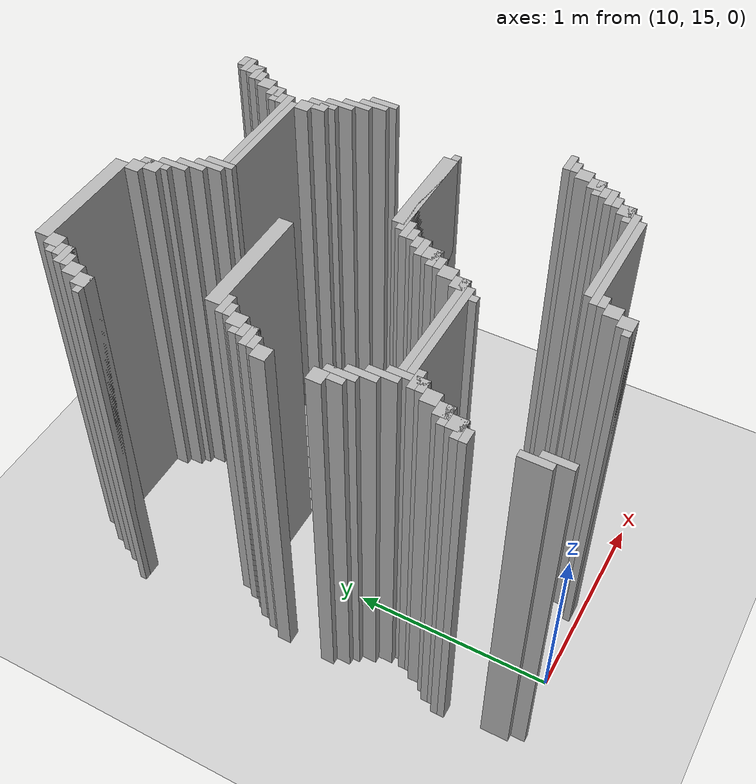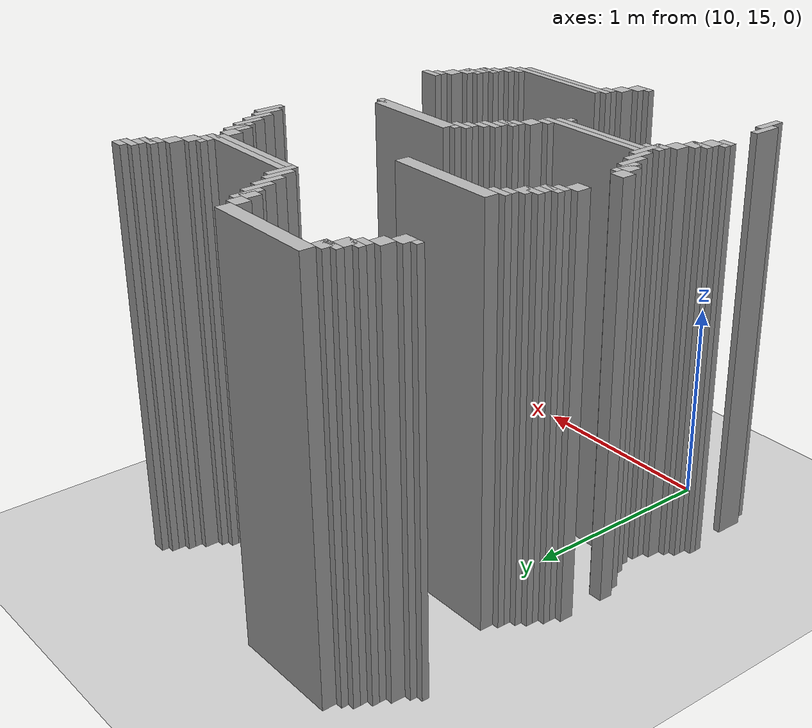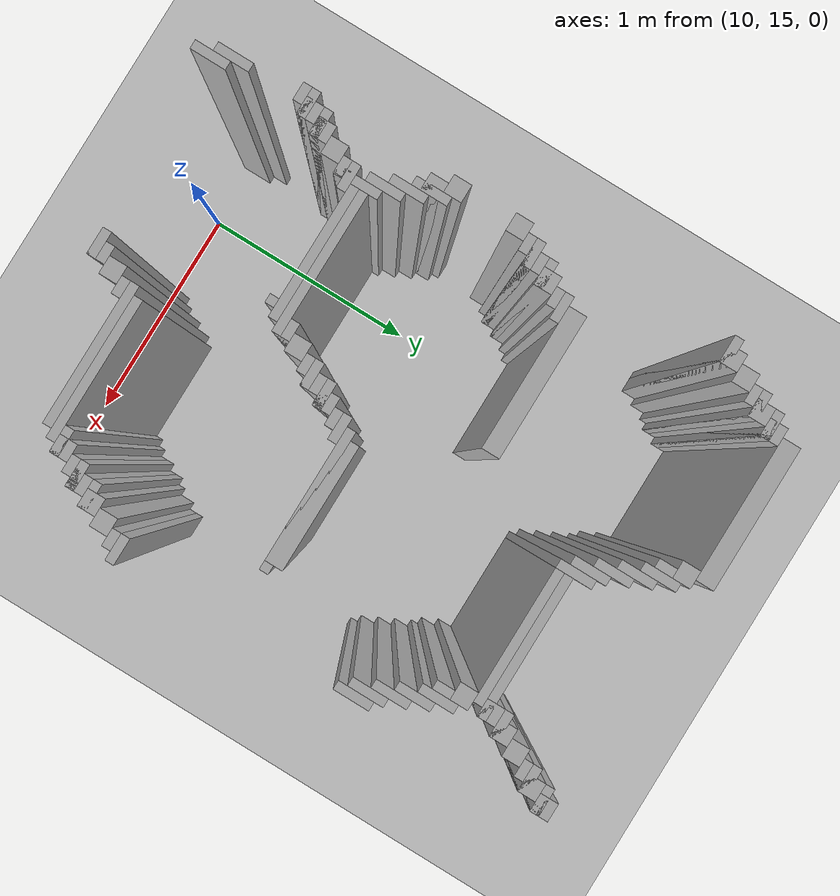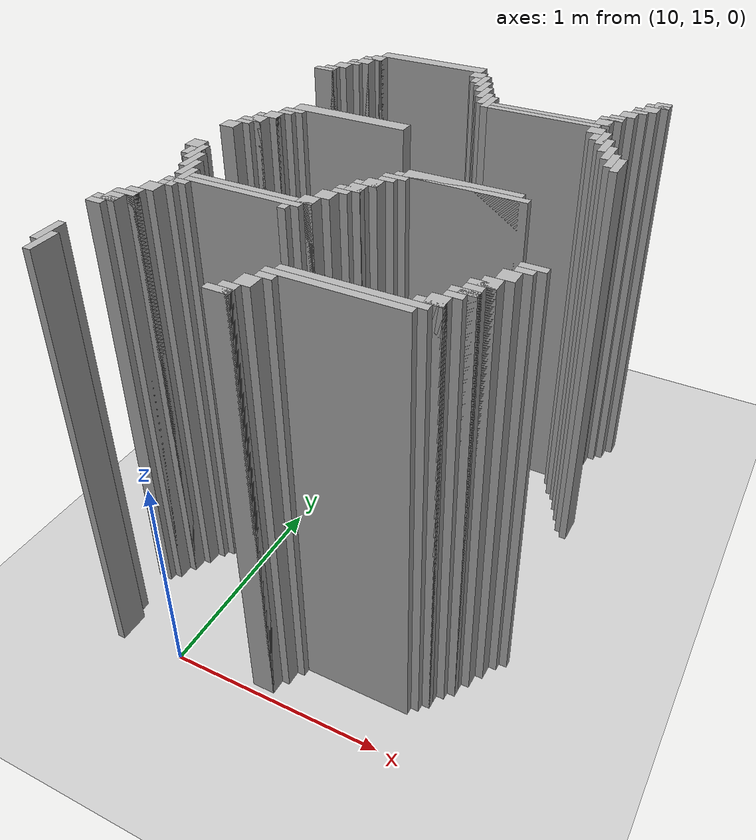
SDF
<sdf version="1.6">
 <world name="slam_world">
  <model name="ground_plane">
   <static>true</static>
   <link name="link">
    <collision name="collision">
     <geometry><plane><normal>0 0 1</normal><size>100 100</size></plane></geometry>
    </collision>
    <visual name="visual">
     <geometry><plane><normal>0 0 1</normal><size>100 100</size></plane></geometry>
     <material>
      <ambient>0.8 0.8 0.8 1</ambient>
      <diffuse>0.8 0.8 0.8 1</diffuse>
      <specular>0.8 0.8 0.8 1</specular>
     </material>
    </visual>
   </link>
  </model>
  <model name="wall_7">
   <static>true</static>
   <pose>10.058004640371228 17.366589327146173 1.0 0 0 0</pose>
   <link name="link">
    <collision name="collision">
     <geometry><box><size>0.5568445475638051 0.06960556844547564 2.0</size></box></geometry>
    </collision>
    <visual name="visual">
     <geometry><box><size>0.5568445475638051 0.06960556844547564 2.0</size></box></geometry>
     <material><ambient>0.5 0.5 0.5 1</ambient><diffuse>0.7 0.7 0.7 1</diffuse></material>
    </visual>
   </link>
  </model>
  <model name="wall_23">
   <static>true</static>
   <pose>9.779582366589327 17.296983758700694 1.0 0 0 0</pose>
   <link name="link">
    <collision name="collision">
     <geometry><box><size>0.06960556844547564 0.06960556844547564 2.0</size></box></geometry>
    </collision>
    <visual name="visual">
     <geometry><box><size>0.06960556844547564 0.06960556844547564 2.0</size></box></geometry>
     <material><ambient>0.5 0.5 0.5 1</ambient><diffuse>0.7 0.7 0.7 1</diffuse></material>
    </visual>
   </link>
  </model>
  <model name="wall_24">
   <static>true</static>
   <pose>10.336426914153131 17.296983758700694 1.0 0 0 0</pose>
   <link name="link">
    <collision name="collision">
     <geometry><box><size>0.06960556844547564 0.06960556844547564 2.0</size></box></geometry>
    </collision>
    <visual name="visual">
     <geometry><box><size>0.06960556844547564 0.06960556844547564 2.0</size></box></geometry>
     <material><ambient>0.5 0.5 0.5 1</ambient><diffuse>0.7 0.7 0.7 1</diffuse></material>
    </visual>
   </link>
  </model>
  <model name="wall_25">
   <static>true</static>
   <pose>11.241299303944315 17.296983758700694 1.0 0 0 0</pose>
   <link name="link">
    <collision name="collision">
     <geometry><box><size>0.06960556844547564 0.06960556844547564 2.0</size></box></geometry>
    </collision>
    <visual name="visual">
     <geometry><box><size>0.06960556844547564 0.06960556844547564 2.0</size></box></geometry>
     <material><ambient>0.5 0.5 0.5 1</ambient><diffuse>0.7 0.7 0.7 1</diffuse></material>
    </visual>
   </link>
  </model>
  <model name="wall_43">
   <static>true</static>
   <pose>9.762180974477959 17.279582366589327 1.0 0 0 0</pose>
   <link name="link">
    <collision name="collision">
     <geometry><box><size>0.10440835266821345 0.03480278422273782 2.0</size></box></geometry>
    </collision>
    <visual name="visual">
     <geometry><box><size>0.10440835266821345 0.03480278422273782 2.0</size></box></geometry>
     <material><ambient>0.5 0.5 0.5 1</ambient><diffuse>0.7 0.7 0.7 1</diffuse></material>
    </visual>
   </link>
  </model>
  <model name="wall_44">
   <static>true</static>
   <pose>10.38863109048724 17.22737819025522 1.0 0 0 0</pose>
   <link name="link">
    <collision name="collision">
     <geometry><box><size>0.03480278422273782 0.13921113689095127 2.0</size></box></geometry>
    </collision>
    <visual name="visual">
     <geometry><box><size>0.03480278422273782 0.13921113689095127 2.0</size></box></geometry>
     <material><ambient>0.5 0.5 0.5 1</ambient><diffuse>0.7 0.7 0.7 1</diffuse></material>
    </visual>
   </link>
  </model>
  <model name="wall_45">
   <static>true</static>
   <pose>11.223897911832946 17.279582366589327 1.0 0 0 0</pose>
   <link name="link">
    <collision name="collision">
     <geometry><box><size>0.10440835266821345 0.03480278422273782 2.0</size></box></geometry>
    </collision>
    <visual name="visual">
     <geometry><box><size>0.10440835266821345 0.03480278422273782 2.0</size></box></geometry>
     <material><ambient>0.5 0.5 0.5 1</ambient><diffuse>0.7 0.7 0.7 1</diffuse></material>
    </visual>
   </link>
  </model>
  <model name="wall_63">
   <static>true</static>
   <pose>9.744779582366588 17.22737819025522 1.0 0 0 0</pose>
   <link name="link">
    <collision name="collision">
     <geometry><box><size>0.06960556844547564 0.06960556844547564 2.0</size></box></geometry>
    </collision>
    <visual name="visual">
     <geometry><box><size>0.06960556844547564 0.06960556844547564 2.0</size></box></geometry>
     <material><ambient>0.5 0.5 0.5 1</ambient><diffuse>0.7 0.7 0.7 1</diffuse></material>
    </visual>
   </link>
  </model>
  <model name="wall_64">
   <static>true</static>
   <pose>10.37122969837587 17.22737819025522 1.0 0 0 0</pose>
   <link name="link">
    <collision name="collision">
     <geometry><box><size>0.06960556844547564 0.06960556844547564 2.0</size></box></geometry>
    </collision>
    <visual name="visual">
     <geometry><box><size>0.06960556844547564 0.06960556844547564 2.0</size></box></geometry>
     <material><ambient>0.5 0.5 0.5 1</ambient><diffuse>0.7 0.7 0.7 1</diffuse></material>
    </visual>
   </link>
  </model>
  <model name="wall_65">
   <static>true</static>
   <pose>11.206496519721577 17.22737819025522 1.0 0 0 0</pose>
   <link name="link">
    <collision name="collision">
     <geometry><box><size>0.06960556844547564 0.06960556844547564 2.0</size></box></geometry>
    </collision>
    <visual name="visual">
     <geometry><box><size>0.06960556844547564 0.06960556844547564 2.0</size></box></geometry>
     <material><ambient>0.5 0.5 0.5 1</ambient><diffuse>0.7 0.7 0.7 1</diffuse></material>
    </visual>
   </link>
  </model>
  <model name="wall_83">
   <static>true</static>
   <pose>9.72737819025522 17.209976798143853 1.0 0 0 0</pose>
   <link name="link">
    <collision name="collision">
     <geometry><box><size>0.10440835266821345 0.03480278422273782 2.0</size></box></geometry>
    </collision>
    <visual name="visual">
     <geometry><box><size>0.10440835266821345 0.03480278422273782 2.0</size></box></geometry>
     <material><ambient>0.5 0.5 0.5 1</ambient><diffuse>0.7 0.7 0.7 1</diffuse></material>
    </visual>
   </link>
  </model>
  <model name="wall_84">
   <static>true</static>
   <pose>10.423433874709977 17.157772621809745 1.0 0 0 0</pose>
   <link name="link">
    <collision name="collision">
     <geometry><box><size>0.03480278422273782 0.13921113689095127 2.0</size></box></geometry>
    </collision>
    <visual name="visual">
     <geometry><box><size>0.03480278422273782 0.13921113689095127 2.0</size></box></geometry>
     <material><ambient>0.5 0.5 0.5 1</ambient><diffuse>0.7 0.7 0.7 1</diffuse></material>
    </visual>
   </link>
  </model>
  <model name="wall_85">
   <static>true</static>
   <pose>11.189095127610209 17.209976798143853 1.0 0 0 0</pose>
   <link name="link">
    <collision name="collision">
     <geometry><box><size>0.10440835266821345 0.03480278422273782 2.0</size></box></geometry>
    </collision>
    <visual name="visual">
     <geometry><box><size>0.10440835266821345 0.03480278422273782 2.0</size></box></geometry>
     <material><ambient>0.5 0.5 0.5 1</ambient><diffuse>0.7 0.7 0.7 1</diffuse></material>
    </visual>
   </link>
  </model>
  <model name="wall_97">
   <static>true</static>
   <pose>9.70997679814385 17.17517401392111 1.0 0 0 0</pose>
   <link name="link">
    <collision name="collision">
     <geometry><box><size>0.06960556844547564 0.03480278422273782 2.0</size></box></geometry>
    </collision>
    <visual name="visual">
     <geometry><box><size>0.06960556844547564 0.03480278422273782 2.0</size></box></geometry>
     <material><ambient>0.5 0.5 0.5 1</ambient><diffuse>0.7 0.7 0.7 1</diffuse></material>
    </visual>
   </link>
  </model>
  <model name="wall_98">
   <static>true</static>
   <pose>11.17169373549884 17.17517401392111 1.0 0 0 0</pose>
   <link name="link">
    <collision name="collision">
     <geometry><box><size>0.06960556844547564 0.03480278422273782 2.0</size></box></geometry>
    </collision>
    <visual name="visual">
     <geometry><box><size>0.06960556844547564 0.03480278422273782 2.0</size></box></geometry>
     <material><ambient>0.5 0.5 0.5 1</ambient><diffuse>0.7 0.7 0.7 1</diffuse></material>
    </visual>
   </link>
  </model>
  <model name="wall_113">
   <static>true</static>
   <pose>9.675174013921113 17.122969837587007 1.0 0 0 0</pose>
   <link name="link">
    <collision name="collision">
     <geometry><box><size>0.06960556844547564 0.06960556844547564 2.0</size></box></geometry>
    </collision>
    <visual name="visual">
     <geometry><box><size>0.06960556844547564 0.06960556844547564 2.0</size></box></geometry>
     <material><ambient>0.5 0.5 0.5 1</ambient><diffuse>0.7 0.7 0.7 1</diffuse></material>
    </visual>
   </link>
  </model>
  <model name="wall_114">
   <static>true</static>
   <pose>10.458236658932714 17.08816705336427 1.0 0 0 0</pose>
   <link name="link">
    <collision name="collision">
     <geometry><box><size>0.03480278422273782 0.13921113689095127 2.0</size></box></geometry>
    </collision>
    <visual name="visual">
     <geometry><box><size>0.03480278422273782 0.13921113689095127 2.0</size></box></geometry>
     <material><ambient>0.5 0.5 0.5 1</ambient><diffuse>0.7 0.7 0.7 1</diffuse></material>
    </visual>
   </link>
  </model>
  <model name="wall_115">
   <static>true</static>
   <pose>11.1368909512761 17.122969837587007 1.0 0 0 0</pose>
   <link name="link">
    <collision name="collision">
     <geometry><box><size>0.06960556844547564 0.06960556844547564 2.0</size></box></geometry>
    </collision>
    <visual name="visual">
     <geometry><box><size>0.06960556844547564 0.06960556844547564 2.0</size></box></geometry>
     <material><ambient>0.5 0.5 0.5 1</ambient><diffuse>0.7 0.7 0.7 1</diffuse></material>
    </visual>
   </link>
  </model>
  <model name="wall_133">
   <static>true</static>
   <pose>9.640371229698376 17.053364269141532 1.0 0 0 0</pose>
   <link name="link">
    <collision name="collision">
     <geometry><box><size>0.06960556844547564 0.06960556844547564 2.0</size></box></geometry>
    </collision>
    <visual name="visual">
     <geometry><box><size>0.06960556844547564 0.06960556844547564 2.0</size></box></geometry>
     <material><ambient>0.5 0.5 0.5 1</ambient><diffuse>0.7 0.7 0.7 1</diffuse></material>
    </visual>
   </link>
  </model>
  <model name="wall_134">
   <static>true</static>
   <pose>10.493039443155451 17.01856148491879 1.0 0 0 0</pose>
   <link name="link">
    <collision name="collision">
     <geometry><box><size>0.03480278422273782 0.13921113689095127 2.0</size></box></geometry>
    </collision>
    <visual name="visual">
     <geometry><box><size>0.03480278422273782 0.13921113689095127 2.0</size></box></geometry>
     <material><ambient>0.5 0.5 0.5 1</ambient><diffuse>0.7 0.7 0.7 1</diffuse></material>
    </visual>
   </link>
  </model>
  <model name="wall_135">
   <static>true</static>
   <pose>11.102088167053363 17.053364269141532 1.0 0 0 0</pose>
   <link name="link">
    <collision name="collision">
     <geometry><box><size>0.06960556844547564 0.06960556844547564 2.0</size></box></geometry>
    </collision>
    <visual name="visual">
     <geometry><box><size>0.06960556844547564 0.06960556844547564 2.0</size></box></geometry>
     <material><ambient>0.5 0.5 0.5 1</ambient><diffuse>0.7 0.7 0.7 1</diffuse></material>
    </visual>
   </link>
  </model>
  <model name="wall_153">
   <static>true</static>
   <pose>9.622969837587007 17.035962877030162 1.0 0 0 0</pose>
   <link name="link">
    <collision name="collision">
     <geometry><box><size>0.10440835266821345 0.03480278422273782 2.0</size></box></geometry>
    </collision>
    <visual name="visual">
     <geometry><box><size>0.10440835266821345 0.03480278422273782 2.0</size></box></geometry>
     <material><ambient>0.5 0.5 0.5 1</ambient><diffuse>0.7 0.7 0.7 1</diffuse></material>
    </visual>
   </link>
  </model>
  <model name="wall_154">
   <static>true</static>
   <pose>10.52784222737819 16.983758700696054 1.0 0 0 0</pose>
   <link name="link">
    <collision name="collision">
     <geometry><box><size>0.03480278422273782 0.13921113689095127 2.0</size></box></geometry>
    </collision>
    <visual name="visual">
     <geometry><box><size>0.03480278422273782 0.13921113689095127 2.0</size></box></geometry>
     <material><ambient>0.5 0.5 0.5 1</ambient><diffuse>0.7 0.7 0.7 1</diffuse></material>
    </visual>
   </link>
  </model>
  <model name="wall_155">
   <static>true</static>
   <pose>11.084686774941995 17.035962877030162 1.0 0 0 0</pose>
   <link name="link">
    <collision name="collision">
     <geometry><box><size>0.10440835266821345 0.03480278422273782 2.0</size></box></geometry>
    </collision>
    <visual name="visual">
     <geometry><box><size>0.10440835266821345 0.03480278422273782 2.0</size></box></geometry>
     <material><ambient>0.5 0.5 0.5 1</ambient><diffuse>0.7 0.7 0.7 1</diffuse></material>
    </visual>
   </link>
  </model>
  <model name="wall_168">
   <static>true</static>
   <pose>11.067285382830626 16.983758700696054 1.0 0 0 0</pose>
   <link name="link">
    <collision name="collision">
     <geometry><box><size>0.06960556844547564 0.06960556844547564 2.0</size></box></geometry>
    </collision>
    <visual name="visual">
     <geometry><box><size>0.06960556844547564 0.06960556844547564 2.0</size></box></geometry>
     <material><ambient>0.5 0.5 0.5 1</ambient><diffuse>0.7 0.7 0.7 1</diffuse></material>
    </visual>
   </link>
  </model>
  <model name="wall_178">
   <static>true</static>
   <pose>10.82366589327146 16.966357308584687 1.0 0 0 0</pose>
   <link name="link">
    <collision name="collision">
     <geometry><box><size>0.5568445475638051 0.03480278422273782 2.0</size></box></geometry>
    </collision>
    <visual name="visual">
     <geometry><box><size>0.5568445475638051 0.03480278422273782 2.0</size></box></geometry>
     <material><ambient>0.5 0.5 0.5 1</ambient><diffuse>0.7 0.7 0.7 1</diffuse></material>
    </visual>
   </link>
  </model>
  <model name="wall_189">
   <static>true</static>
   <pose>10.806264501160092 16.93155452436195 1.0 0 0 0</pose>
   <link name="link">
    <collision name="collision">
     <geometry><box><size>0.5220417633410672 0.03480278422273782 2.0</size></box></geometry>
    </collision>
    <visual name="visual">
     <geometry><box><size>0.5220417633410672 0.03480278422273782 2.0</size></box></geometry>
     <material><ambient>0.5 0.5 0.5 1</ambient><diffuse>0.7 0.7 0.7 1</diffuse></material>
    </visual>
   </link>
  </model>
  <model name="wall_198">
   <static>true</static>
   <pose>11.067285382830626 16.87935034802784 1.0 0 0 0</pose>
   <link name="link">
    <collision name="collision">
     <geometry><box><size>0.06960556844547564 0.06960556844547564 2.0</size></box></geometry>
    </collision>
    <visual name="visual">
     <geometry><box><size>0.06960556844547564 0.06960556844547564 2.0</size></box></geometry>
     <material><ambient>0.5 0.5 0.5 1</ambient><diffuse>0.7 0.7 0.7 1</diffuse></material>
    </visual>
   </link>
  </model>
  <model name="wall_207">
   <static>true</static>
   <pose>11.119489559164732 16.809744779582367 1.0 0 0 0</pose>
   <link name="link">
    <collision name="collision">
     <geometry><box><size>0.03480278422273782 0.13921113689095127 2.0</size></box></geometry>
    </collision>
    <visual name="visual">
     <geometry><box><size>0.03480278422273782 0.13921113689095127 2.0</size></box></geometry>
     <material><ambient>0.5 0.5 0.5 1</ambient><diffuse>0.7 0.7 0.7 1</diffuse></material>
    </visual>
   </link>
  </model>
  <model name="wall_216">
   <static>true</static>
   <pose>11.102088167053363 16.809744779582367 1.0 0 0 0</pose>
   <link name="link">
    <collision name="collision">
     <geometry><box><size>0.06960556844547564 0.06960556844547564 2.0</size></box></geometry>
    </collision>
    <visual name="visual">
     <geometry><box><size>0.06960556844547564 0.06960556844547564 2.0</size></box></geometry>
     <material><ambient>0.5 0.5 0.5 1</ambient><diffuse>0.7 0.7 0.7 1</diffuse></material>
    </visual>
   </link>
  </model>
  <model name="wall_225">
   <static>true</static>
   <pose>11.154292343387471 16.74013921113689 1.0 0 0 0</pose>
   <link name="link">
    <collision name="collision">
     <geometry><box><size>0.03480278422273782 0.13921113689095127 2.0</size></box></geometry>
    </collision>
    <visual name="visual">
     <geometry><box><size>0.03480278422273782 0.13921113689095127 2.0</size></box></geometry>
     <material><ambient>0.5 0.5 0.5 1</ambient><diffuse>0.7 0.7 0.7 1</diffuse></material>
    </visual>
   </link>
  </model>
  <model name="wall_238">
   <static>true</static>
   <pose>11.189095127610209 16.670533642691414 1.0 0 0 0</pose>
   <link name="link">
    <collision name="collision">
     <geometry><box><size>0.03480278422273782 0.13921113689095127 2.0</size></box></geometry>
    </collision>
    <visual name="visual">
     <geometry><box><size>0.03480278422273782 0.13921113689095127 2.0</size></box></geometry>
     <material><ambient>0.5 0.5 0.5 1</ambient><diffuse>0.7 0.7 0.7 1</diffuse></material>
    </visual>
   </link>
  </model>
  <model name="wall_247">
   <static>true</static>
   <pose>11.223897911832946 16.60092807424594 1.0 0 0 0</pose>
   <link name="link">
    <collision name="collision">
     <geometry><box><size>0.03480278422273782 0.13921113689095127 2.0</size></box></geometry>
    </collision>
    <visual name="visual">
     <geometry><box><size>0.03480278422273782 0.13921113689095127 2.0</size></box></geometry>
     <material><ambient>0.5 0.5 0.5 1</ambient><diffuse>0.7 0.7 0.7 1</diffuse></material>
    </visual>
   </link>
  </model>
  <model name="wall_256">
   <static>true</static>
   <pose>11.258700696055683 16.5661252900232 1.0 0 0 0</pose>
   <link name="link">
    <collision name="collision">
     <geometry><box><size>0.03480278422273782 0.13921113689095127 2.0</size></box></geometry>
    </collision>
    <visual name="visual">
     <geometry><box><size>0.03480278422273782 0.13921113689095127 2.0</size></box></geometry>
     <material><ambient>0.5 0.5 0.5 1</ambient><diffuse>0.7 0.7 0.7 1</diffuse></material>
    </visual>
   </link>
  </model>
  <model name="wall_271">
   <static>true</static>
   <pose>10.058004640371228 16.531322505800464 1.0 0 0 0</pose>
   <link name="link">
    <collision name="collision">
     <geometry><box><size>0.5568445475638051 0.06960556844547564 2.0</size></box></geometry>
    </collision>
    <visual name="visual">
     <geometry><box><size>0.5568445475638051 0.06960556844547564 2.0</size></box></geometry>
     <material><ambient>0.5 0.5 0.5 1</ambient><diffuse>0.7 0.7 0.7 1</diffuse></material>
    </visual>
   </link>
  </model>
  <model name="wall_289">
   <static>true</static>
   <pose>9.796983758700696 16.479118329466356 1.0 0 0 0</pose>
   <link name="link">
    <collision name="collision">
     <geometry><box><size>0.10440835266821345 0.03480278422273782 2.0</size></box></geometry>
    </collision>
    <visual name="visual">
     <geometry><box><size>0.10440835266821345 0.03480278422273782 2.0</size></box></geometry>
     <material><ambient>0.5 0.5 0.5 1</ambient><diffuse>0.7 0.7 0.7 1</diffuse></material>
    </visual>
   </link>
  </model>
  <model name="wall_300">
   <static>true</static>
   <pose>9.779582366589327 16.44431554524362 1.0 0 0 0</pose>
   <link name="link">
    <collision name="collision">
     <geometry><box><size>0.06960556844547564 0.03480278422273782 2.0</size></box></geometry>
    </collision>
    <visual name="visual">
     <geometry><box><size>0.06960556844547564 0.03480278422273782 2.0</size></box></geometry>
     <material><ambient>0.5 0.5 0.5 1</ambient><diffuse>0.7 0.7 0.7 1</diffuse></material>
    </visual>
   </link>
  </model>
  <model name="wall_312">
   <static>true</static>
   <pose>9.744779582366588 16.39211136890951 1.0 0 0 0</pose>
   <link name="link">
    <collision name="collision">
     <geometry><box><size>0.06960556844547564 0.06960556844547564 2.0</size></box></geometry>
    </collision>
    <visual name="visual">
     <geometry><box><size>0.06960556844547564 0.06960556844547564 2.0</size></box></geometry>
     <material><ambient>0.5 0.5 0.5 1</ambient><diffuse>0.7 0.7 0.7 1</diffuse></material>
    </visual>
   </link>
  </model>
  <model name="wall_326">
   <static>true</static>
   <pose>9.72737819025522 16.374709976798144 1.0 0 0 0</pose>
   <link name="link">
    <collision name="collision">
     <geometry><box><size>0.10440835266821345 0.03480278422273782 2.0</size></box></geometry>
    </collision>
    <visual name="visual">
     <geometry><box><size>0.10440835266821345 0.03480278422273782 2.0</size></box></geometry>
     <material><ambient>0.5 0.5 0.5 1</ambient><diffuse>0.7 0.7 0.7 1</diffuse></material>
    </visual>
   </link>
  </model>
  <model name="wall_340">
   <static>true</static>
   <pose>9.70997679814385 16.322505800464036 1.0 0 0 0</pose>
   <link name="link">
    <collision name="collision">
     <geometry><box><size>0.06960556844547564 0.06960556844547564 2.0</size></box></geometry>
    </collision>
    <visual name="visual">
     <geometry><box><size>0.06960556844547564 0.06960556844547564 2.0</size></box></geometry>
     <material><ambient>0.5 0.5 0.5 1</ambient><diffuse>0.7 0.7 0.7 1</diffuse></material>
    </visual>
   </link>
  </model>
  <model name="wall_354">
   <static>true</static>
   <pose>9.692575406032482 16.30510440835267 1.0 0 0 0</pose>
   <link name="link">
    <collision name="collision">
     <geometry><box><size>0.10440835266821345 0.03480278422273782 2.0</size></box></geometry>
    </collision>
    <visual name="visual">
     <geometry><box><size>0.10440835266821345 0.03480278422273782 2.0</size></box></geometry>
     <material><ambient>0.5 0.5 0.5 1</ambient><diffuse>0.7 0.7 0.7 1</diffuse></material>
    </visual>
   </link>
  </model>
  <model name="wall_364">
   <static>true</static>
   <pose>9.675174013921113 16.270301624129928 1.0 0 0 0</pose>
   <link name="link">
    <collision name="collision">
     <geometry><box><size>0.06960556844547564 0.03480278422273782 2.0</size></box></geometry>
    </collision>
    <visual name="visual">
     <geometry><box><size>0.06960556844547564 0.03480278422273782 2.0</size></box></geometry>
     <material><ambient>0.5 0.5 0.5 1</ambient><diffuse>0.7 0.7 0.7 1</diffuse></material>
    </visual>
   </link>
  </model>
  <model name="wall_376">
   <static>true</static>
   <pose>9.640371229698376 16.218097447795824 1.0 0 0 0</pose>
   <link name="link">
    <collision name="collision">
     <geometry><box><size>0.06960556844547564 0.06960556844547564 2.0</size></box></geometry>
    </collision>
    <visual name="visual">
     <geometry><box><size>0.06960556844547564 0.06960556844547564 2.0</size></box></geometry>
     <material><ambient>0.5 0.5 0.5 1</ambient><diffuse>0.7 0.7 0.7 1</diffuse></material>
    </visual>
   </link>
  </model>
  <model name="wall_412">
   <static>true</static>
   <pose>10.788863109048723 16.113689095127608 1.0 0 0 0</pose>
   <link name="link">
    <collision name="collision">
     <geometry><box><size>0.4872389791183295 0.06960556844547564 2.0</size></box></geometry>
    </collision>
    <visual name="visual">
     <geometry><box><size>0.4872389791183295 0.06960556844547564 2.0</size></box></geometry>
     <material><ambient>0.5 0.5 0.5 1</ambient><diffuse>0.7 0.7 0.7 1</diffuse></material>
    </visual>
   </link>
  </model>
  <model name="wall_424">
   <static>true</static>
   <pose>10.788863109048723 16.09628770301624 1.0 0 0 0</pose>
   <link name="link">
    <collision name="collision">
     <geometry><box><size>0.5568445475638051 0.03480278422273782 2.0</size></box></geometry>
    </collision>
    <visual name="visual">
     <geometry><box><size>0.5568445475638051 0.03480278422273782 2.0</size></box></geometry>
     <material><ambient>0.5 0.5 0.5 1</ambient><diffuse>0.7 0.7 0.7 1</diffuse></material>
    </visual>
   </link>
  </model>
  <model name="wall_437">
   <static>true</static>
   <pose>10.52784222737819 16.061484918793504 1.0 0 0 0</pose>
   <link name="link">
    <collision name="collision">
     <geometry><box><size>0.10440835266821345 0.03480278422273782 2.0</size></box></geometry>
    </collision>
    <visual name="visual">
     <geometry><box><size>0.10440835266821345 0.03480278422273782 2.0</size></box></geometry>
     <material><ambient>0.5 0.5 0.5 1</ambient><diffuse>0.7 0.7 0.7 1</diffuse></material>
    </visual>
   </link>
  </model>
  <model name="wall_451">
   <static>true</static>
   <pose>10.51044083526682 16.026682134570766 1.0 0 0 0</pose>
   <link name="link">
    <collision name="collision">
     <geometry><box><size>0.06960556844547564 0.03480278422273782 2.0</size></box></geometry>
    </collision>
    <visual name="visual">
     <geometry><box><size>0.06960556844547564 0.03480278422273782 2.0</size></box></geometry>
     <material><ambient>0.5 0.5 0.5 1</ambient><diffuse>0.7 0.7 0.7 1</diffuse></material>
    </visual>
   </link>
  </model>
  <model name="wall_464">
   <static>true</static>
   <pose>9.640371229698376 15.974477958236658 1.0 0 0 0</pose>
   <link name="link">
    <collision name="collision">
     <geometry><box><size>0.06960556844547564 0.06960556844547564 2.0</size></box></geometry>
    </collision>
    <visual name="visual">
     <geometry><box><size>0.06960556844547564 0.06960556844547564 2.0</size></box></geometry>
     <material><ambient>0.5 0.5 0.5 1</ambient><diffuse>0.7 0.7 0.7 1</diffuse></material>
    </visual>
   </link>
  </model>
  <model name="wall_465">
   <static>true</static>
   <pose>10.475638051044083 15.974477958236658 1.0 0 0 0</pose>
   <link name="link">
    <collision name="collision">
     <geometry><box><size>0.06960556844547564 0.06960556844547564 2.0</size></box></geometry>
    </collision>
    <visual name="visual">
     <geometry><box><size>0.06960556844547564 0.06960556844547564 2.0</size></box></geometry>
     <material><ambient>0.5 0.5 0.5 1</ambient><diffuse>0.7 0.7 0.7 1</diffuse></material>
    </visual>
   </link>
  </model>
  <model name="wall_478">
   <static>true</static>
   <pose>9.692575406032482 15.904872389791183 1.0 0 0 0</pose>
   <link name="link">
    <collision name="collision">
     <geometry><box><size>0.03480278422273782 0.13921113689095127 2.0</size></box></geometry>
    </collision>
    <visual name="visual">
     <geometry><box><size>0.03480278422273782 0.13921113689095127 2.0</size></box></geometry>
     <material><ambient>0.5 0.5 0.5 1</ambient><diffuse>0.7 0.7 0.7 1</diffuse></material>
    </visual>
   </link>
  </model>
  <model name="wall_479">
   <static>true</static>
   <pose>10.458236658932714 15.95707656612529 1.0 0 0 0</pose>
   <link name="link">
    <collision name="collision">
     <geometry><box><size>0.10440835266821345 0.03480278422273782 2.0</size></box></geometry>
    </collision>
    <visual name="visual">
     <geometry><box><size>0.10440835266821345 0.03480278422273782 2.0</size></box></geometry>
     <material><ambient>0.5 0.5 0.5 1</ambient><diffuse>0.7 0.7 0.7 1</diffuse></material>
    </visual>
   </link>
  </model>
  <model name="wall_489">
   <static>true</static>
   <pose>9.675174013921113 15.904872389791183 1.0 0 0 0</pose>
   <link name="link">
    <collision name="collision">
     <geometry><box><size>0.06960556844547564 0.06960556844547564 2.0</size></box></geometry>
    </collision>
    <visual name="visual">
     <geometry><box><size>0.06960556844547564 0.06960556844547564 2.0</size></box></geometry>
     <material><ambient>0.5 0.5 0.5 1</ambient><diffuse>0.7 0.7 0.7 1</diffuse></material>
    </visual>
   </link>
  </model>
  <model name="wall_490">
   <static>true</static>
   <pose>10.440835266821345 15.904872389791183 1.0 0 0 0</pose>
   <link name="link">
    <collision name="collision">
     <geometry><box><size>0.06960556844547564 0.06960556844547564 2.0</size></box></geometry>
    </collision>
    <visual name="visual">
     <geometry><box><size>0.06960556844547564 0.06960556844547564 2.0</size></box></geometry>
     <material><ambient>0.5 0.5 0.5 1</ambient><diffuse>0.7 0.7 0.7 1</diffuse></material>
    </visual>
   </link>
  </model>
  <model name="wall_502">
   <static>true</static>
   <pose>9.72737819025522 15.835266821345707 1.0 0 0 0</pose>
   <link name="link">
    <collision name="collision">
     <geometry><box><size>0.03480278422273782 0.13921113689095127 2.0</size></box></geometry>
    </collision>
    <visual name="visual">
     <geometry><box><size>0.03480278422273782 0.13921113689095127 2.0</size></box></geometry>
     <material><ambient>0.5 0.5 0.5 1</ambient><diffuse>0.7 0.7 0.7 1</diffuse></material>
    </visual>
   </link>
  </model>
  <model name="wall_503">
   <static>true</static>
   <pose>10.423433874709977 15.887470997679813 1.0 0 0 0</pose>
   <link name="link">
    <collision name="collision">
     <geometry><box><size>0.10440835266821345 0.03480278422273782 2.0</size></box></geometry>
    </collision>
    <visual name="visual">
     <geometry><box><size>0.10440835266821345 0.03480278422273782 2.0</size></box></geometry>
     <material><ambient>0.5 0.5 0.5 1</ambient><diffuse>0.7 0.7 0.7 1</diffuse></material>
    </visual>
   </link>
  </model>
  <model name="wall_513">
   <static>true</static>
   <pose>10.406032482598608 15.852668213457076 1.0 0 0 0</pose>
   <link name="link">
    <collision name="collision">
     <geometry><box><size>0.06960556844547564 0.03480278422273782 2.0</size></box></geometry>
    </collision>
    <visual name="visual">
     <geometry><box><size>0.06960556844547564 0.03480278422273782 2.0</size></box></geometry>
     <material><ambient>0.5 0.5 0.5 1</ambient><diffuse>0.7 0.7 0.7 1</diffuse></material>
    </visual>
   </link>
  </model>
  <model name="wall_524">
   <static>true</static>
   <pose>9.762180974477959 15.765661252900232 1.0 0 0 0</pose>
   <link name="link">
    <collision name="collision">
     <geometry><box><size>0.03480278422273782 0.13921113689095127 2.0</size></box></geometry>
    </collision>
    <visual name="visual">
     <geometry><box><size>0.03480278422273782 0.13921113689095127 2.0</size></box></geometry>
     <material><ambient>0.5 0.5 0.5 1</ambient><diffuse>0.7 0.7 0.7 1</diffuse></material>
    </visual>
   </link>
  </model>
  <model name="wall_525">
   <static>true</static>
   <pose>10.37122969837587 15.80046403712297 1.0 0 0 0</pose>
   <link name="link">
    <collision name="collision">
     <geometry><box><size>0.06960556844547564 0.06960556844547564 2.0</size></box></geometry>
    </collision>
    <visual name="visual">
     <geometry><box><size>0.06960556844547564 0.06960556844547564 2.0</size></box></geometry>
     <material><ambient>0.5 0.5 0.5 1</ambient><diffuse>0.7 0.7 0.7 1</diffuse></material>
    </visual>
   </link>
  </model>
  <model name="wall_538">
   <static>true</static>
   <pose>9.796983758700696 15.678654292343387 1.0 0 0 0</pose>
   <link name="link">
    <collision name="collision">
     <geometry><box><size>0.03480278422273782 0.17401392111368907 2.0</size></box></geometry>
    </collision>
    <visual name="visual">
     <geometry><box><size>0.03480278422273782 0.17401392111368907 2.0</size></box></geometry>
     <material><ambient>0.5 0.5 0.5 1</ambient><diffuse>0.7 0.7 0.7 1</diffuse></material>
    </visual>
   </link>
  </model>
  <model name="wall_539">
   <static>true</static>
   <pose>10.336426914153131 15.730858468677493 1.0 0 0 0</pose>
   <link name="link">
    <collision name="collision">
     <geometry><box><size>0.06960556844547564 0.06960556844547564 2.0</size></box></geometry>
    </collision>
    <visual name="visual">
     <geometry><box><size>0.06960556844547564 0.06960556844547564 2.0</size></box></geometry>
     <material><ambient>0.5 0.5 0.5 1</ambient><diffuse>0.7 0.7 0.7 1</diffuse></material>
    </visual>
   </link>
  </model>
  <model name="wall_551">
   <static>true</static>
   <pose>10.092807424593968 15.713457076566124 1.0 0 0 0</pose>
   <link name="link">
    <collision name="collision">
     <geometry><box><size>0.5568445475638051 0.03480278422273782 2.0</size></box></geometry>
    </collision>
    <visual name="visual">
     <geometry><box><size>0.5568445475638051 0.03480278422273782 2.0</size></box></geometry>
     <material><ambient>0.5 0.5 0.5 1</ambient><diffuse>0.7 0.7 0.7 1</diffuse></material>
    </visual>
   </link>
  </model>
  <model name="wall_565">
   <static>true</static>
   <pose>10.075406032482599 15.678654292343387 1.0 0 0 0</pose>
   <link name="link">
    <collision name="collision">
     <geometry><box><size>0.5220417633410672 0.03480278422273782 2.0</size></box></geometry>
    </collision>
    <visual name="visual">
     <geometry><box><size>0.5220417633410672 0.03480278422273782 2.0</size></box></geometry>
     <material><ambient>0.5 0.5 0.5 1</ambient><diffuse>0.7 0.7 0.7 1</diffuse></material>
    </visual>
   </link>
  </model>
  <model name="wall_581">
   <static>true</static>
   <pose>9.796983758700696 15.64385150812065 1.0 0 0 0</pose>
   <link name="link">
    <collision name="collision">
     <geometry><box><size>0.10440835266821345 0.03480278422273782 2.0</size></box></geometry>
    </collision>
    <visual name="visual">
     <geometry><box><size>0.10440835266821345 0.03480278422273782 2.0</size></box></geometry>
     <material><ambient>0.5 0.5 0.5 1</ambient><diffuse>0.7 0.7 0.7 1</diffuse></material>
    </visual>
   </link>
  </model>
  <model name="wall_582">
   <static>true</static>
   <pose>10.284222737819025 15.64385150812065 1.0 0 0 0</pose>
   <link name="link">
    <collision name="collision">
     <geometry><box><size>0.03480278422273782 0.03480278422273782 2.0</size></box></geometry>
    </collision>
    <visual name="visual">
     <geometry><box><size>0.03480278422273782 0.03480278422273782 2.0</size></box></geometry>
     <material><ambient>0.5 0.5 0.5 1</ambient><diffuse>0.7 0.7 0.7 1</diffuse></material>
    </visual>
   </link>
  </model>
  <model name="wall_583">
   <static>true</static>
   <pose>11.258700696055683 15.64385150812065 1.0 0 0 0</pose>
   <link name="link">
    <collision name="collision">
     <geometry><box><size>0.10440835266821345 0.03480278422273782 2.0</size></box></geometry>
    </collision>
    <visual name="visual">
     <geometry><box><size>0.10440835266821345 0.03480278422273782 2.0</size></box></geometry>
     <material><ambient>0.5 0.5 0.5 1</ambient><diffuse>0.7 0.7 0.7 1</diffuse></material>
    </visual>
   </link>
  </model>
  <model name="wall_600">
   <static>true</static>
   <pose>9.779582366589327 15.609048723897912 1.0 0 0 0</pose>
   <link name="link">
    <collision name="collision">
     <geometry><box><size>0.06960556844547564 0.03480278422273782 2.0</size></box></geometry>
    </collision>
    <visual name="visual">
     <geometry><box><size>0.06960556844547564 0.03480278422273782 2.0</size></box></geometry>
     <material><ambient>0.5 0.5 0.5 1</ambient><diffuse>0.7 0.7 0.7 1</diffuse></material>
    </visual>
   </link>
  </model>
  <model name="wall_601">
   <static>true</static>
   <pose>11.241299303944315 15.609048723897912 1.0 0 0 0</pose>
   <link name="link">
    <collision name="collision">
     <geometry><box><size>0.06960556844547564 0.03480278422273782 2.0</size></box></geometry>
    </collision>
    <visual name="visual">
     <geometry><box><size>0.06960556844547564 0.03480278422273782 2.0</size></box></geometry>
     <material><ambient>0.5 0.5 0.5 1</ambient><diffuse>0.7 0.7 0.7 1</diffuse></material>
    </visual>
   </link>
  </model>
  <model name="wall_617">
   <static>true</static>
   <pose>9.744779582366588 15.556844547563804 1.0 0 0 0</pose>
   <link name="link">
    <collision name="collision">
     <geometry><box><size>0.06960556844547564 0.06960556844547564 2.0</size></box></geometry>
    </collision>
    <visual name="visual">
     <geometry><box><size>0.06960556844547564 0.06960556844547564 2.0</size></box></geometry>
     <material><ambient>0.5 0.5 0.5 1</ambient><diffuse>0.7 0.7 0.7 1</diffuse></material>
    </visual>
   </link>
  </model>
  <model name="wall_618">
   <static>true</static>
   <pose>11.206496519721577 15.556844547563804 1.0 0 0 0</pose>
   <link name="link">
    <collision name="collision">
     <geometry><box><size>0.06960556844547564 0.06960556844547564 2.0</size></box></geometry>
    </collision>
    <visual name="visual">
     <geometry><box><size>0.06960556844547564 0.06960556844547564 2.0</size></box></geometry>
     <material><ambient>0.5 0.5 0.5 1</ambient><diffuse>0.7 0.7 0.7 1</diffuse></material>
    </visual>
   </link>
  </model>
  <model name="wall_634">
   <static>true</static>
   <pose>9.70997679814385 15.48723897911833 1.0 0 0 0</pose>
   <link name="link">
    <collision name="collision">
     <geometry><box><size>0.06960556844547564 0.06960556844547564 2.0</size></box></geometry>
    </collision>
    <visual name="visual">
     <geometry><box><size>0.06960556844547564 0.06960556844547564 2.0</size></box></geometry>
     <material><ambient>0.5 0.5 0.5 1</ambient><diffuse>0.7 0.7 0.7 1</diffuse></material>
    </visual>
   </link>
  </model>
  <model name="wall_635">
   <static>true</static>
   <pose>11.17169373549884 15.48723897911833 1.0 0 0 0</pose>
   <link name="link">
    <collision name="collision">
     <geometry><box><size>0.06960556844547564 0.06960556844547564 2.0</size></box></geometry>
    </collision>
    <visual name="visual">
     <geometry><box><size>0.06960556844547564 0.06960556844547564 2.0</size></box></geometry>
     <material><ambient>0.5 0.5 0.5 1</ambient><diffuse>0.7 0.7 0.7 1</diffuse></material>
    </visual>
   </link>
  </model>
  <model name="wall_651">
   <static>true</static>
   <pose>9.692575406032482 15.46983758700696 1.0 0 0 0</pose>
   <link name="link">
    <collision name="collision">
     <geometry><box><size>0.10440835266821345 0.03480278422273782 2.0</size></box></geometry>
    </collision>
    <visual name="visual">
     <geometry><box><size>0.10440835266821345 0.03480278422273782 2.0</size></box></geometry>
     <material><ambient>0.5 0.5 0.5 1</ambient><diffuse>0.7 0.7 0.7 1</diffuse></material>
    </visual>
   </link>
  </model>
  <model name="wall_652">
   <static>true</static>
   <pose>11.154292343387471 15.46983758700696 1.0 0 0 0</pose>
   <link name="link">
    <collision name="collision">
     <geometry><box><size>0.10440835266821345 0.03480278422273782 2.0</size></box></geometry>
    </collision>
    <visual name="visual">
     <geometry><box><size>0.10440835266821345 0.03480278422273782 2.0</size></box></geometry>
     <material><ambient>0.5 0.5 0.5 1</ambient><diffuse>0.7 0.7 0.7 1</diffuse></material>
    </visual>
   </link>
  </model>
  <model name="wall_664">
   <static>true</static>
   <pose>9.675174013921113 15.417633410672853 1.0 0 0 0</pose>
   <link name="link">
    <collision name="collision">
     <geometry><box><size>0.06960556844547564 0.06960556844547564 2.0</size></box></geometry>
    </collision>
    <visual name="visual">
     <geometry><box><size>0.06960556844547564 0.06960556844547564 2.0</size></box></geometry>
     <material><ambient>0.5 0.5 0.5 1</ambient><diffuse>0.7 0.7 0.7 1</diffuse></material>
    </visual>
   </link>
  </model>
  <model name="wall_665">
   <static>true</static>
   <pose>11.1368909512761 15.417633410672853 1.0 0 0 0</pose>
   <link name="link">
    <collision name="collision">
     <geometry><box><size>0.06960556844547564 0.06960556844547564 2.0</size></box></geometry>
    </collision>
    <visual name="visual">
     <geometry><box><size>0.06960556844547564 0.06960556844547564 2.0</size></box></geometry>
     <material><ambient>0.5 0.5 0.5 1</ambient><diffuse>0.7 0.7 0.7 1</diffuse></material>
    </visual>
   </link>
  </model>
  <model name="wall_680">
   <static>true</static>
   <pose>9.657772621809745 15.400232018561484 1.0 0 0 0</pose>
   <link name="link">
    <collision name="collision">
     <geometry><box><size>0.10440835266821345 0.03480278422273782 2.0</size></box></geometry>
    </collision>
    <visual name="visual">
     <geometry><box><size>0.10440835266821345 0.03480278422273782 2.0</size></box></geometry>
     <material><ambient>0.5 0.5 0.5 1</ambient><diffuse>0.7 0.7 0.7 1</diffuse></material>
    </visual>
   </link>
  </model>
  <model name="wall_681">
   <static>true</static>
   <pose>11.119489559164732 15.400232018561484 1.0 0 0 0</pose>
   <link name="link">
    <collision name="collision">
     <geometry><box><size>0.10440835266821345 0.03480278422273782 2.0</size></box></geometry>
    </collision>
    <visual name="visual">
     <geometry><box><size>0.10440835266821345 0.03480278422273782 2.0</size></box></geometry>
     <material><ambient>0.5 0.5 0.5 1</ambient><diffuse>0.7 0.7 0.7 1</diffuse></material>
    </visual>
   </link>
  </model>
  <model name="wall_691">
   <static>true</static>
   <pose>9.640371229698376 15.365429234338746 1.0 0 0 0</pose>
   <link name="link">
    <collision name="collision">
     <geometry><box><size>0.06960556844547564 0.03480278422273782 2.0</size></box></geometry>
    </collision>
    <visual name="visual">
     <geometry><box><size>0.06960556844547564 0.03480278422273782 2.0</size></box></geometry>
     <material><ambient>0.5 0.5 0.5 1</ambient><diffuse>0.7 0.7 0.7 1</diffuse></material>
    </visual>
   </link>
  </model>
  <model name="wall_692">
   <static>true</static>
   <pose>11.102088167053363 15.365429234338746 1.0 0 0 0</pose>
   <link name="link">
    <collision name="collision">
     <geometry><box><size>0.06960556844547564 0.03480278422273782 2.0</size></box></geometry>
    </collision>
    <visual name="visual">
     <geometry><box><size>0.06960556844547564 0.03480278422273782 2.0</size></box></geometry>
     <material><ambient>0.5 0.5 0.5 1</ambient><diffuse>0.7 0.7 0.7 1</diffuse></material>
    </visual>
   </link>
  </model>
  <model name="wall_706">
   <static>true</static>
   <pose>11.067285382830626 15.31322505800464 1.0 0 0 0</pose>
   <link name="link">
    <collision name="collision">
     <geometry><box><size>0.06960556844547564 0.06960556844547564 2.0</size></box></geometry>
    </collision>
    <visual name="visual">
     <geometry><box><size>0.06960556844547564 0.06960556844547564 2.0</size></box></geometry>
     <material><ambient>0.5 0.5 0.5 1</ambient><diffuse>0.7 0.7 0.7 1</diffuse></material>
    </visual>
   </link>
  </model>
  <model name="wall_723">
   <static>true</static>
   <pose>11.049883990719257 15.295823665893272 1.0 0 0 0</pose>
   <link name="link">
    <collision name="collision">
     <geometry><box><size>0.10440835266821345 0.03480278422273782 2.0</size></box></geometry>
    </collision>
    <visual name="visual">
     <geometry><box><size>0.10440835266821345 0.03480278422273782 2.0</size></box></geometry>
     <material><ambient>0.5 0.5 0.5 1</ambient><diffuse>0.7 0.7 0.7 1</diffuse></material>
    </visual>
   </link>
  </model>
  <model name="wall_735">
   <static>true</static>
   <pose>10.788863109048723 15.261020881670532 1.0 0 0 0</pose>
   <link name="link">
    <collision name="collision">
     <geometry><box><size>0.5568445475638051 0.03480278422273782 2.0</size></box></geometry>
    </collision>
    <visual name="visual">
     <geometry><box><size>0.5568445475638051 0.03480278422273782 2.0</size></box></geometry>
     <material><ambient>0.5 0.5 0.5 1</ambient><diffuse>0.7 0.7 0.7 1</diffuse></material>
    </visual>
   </link>
  </model>
  <model name="wall_745">
   <static>true</static>
   <pose>10.754060324825986 15.226218097447795 1.0 0 0 0</pose>
   <link name="link">
    <collision name="collision">
     <geometry><box><size>0.5568445475638051 0.03480278422273782 2.0</size></box></geometry>
    </collision>
    <visual name="visual">
     <geometry><box><size>0.5568445475638051 0.03480278422273782 2.0</size></box></geometry>
     <material><ambient>0.5 0.5 0.5 1</ambient><diffuse>0.7 0.7 0.7 1</diffuse></material>
    </visual>
   </link>
  </model>
  <model name="wall_757">
   <static>true</static>
   <pose>10.51044083526682 15.191415313225058 1.0 0 0 0</pose>
   <link name="link">
    <collision name="collision">
     <geometry><box><size>0.06960556844547564 0.03480278422273782 2.0</size></box></geometry>
    </collision>
    <visual name="visual">
     <geometry><box><size>0.06960556844547564 0.03480278422273782 2.0</size></box></geometry>
     <material><ambient>0.5 0.5 0.5 1</ambient><diffuse>0.7 0.7 0.7 1</diffuse></material>
    </visual>
   </link>
  </model>
  <model name="wall_768">
   <static>true</static>
   <pose>9.657772621809745 15.104408352668212 1.0 0 0 0</pose>
   <link name="link">
    <collision name="collision">
     <geometry><box><size>0.03480278422273782 0.13921113689095127 2.0</size></box></geometry>
    </collision>
    <visual name="visual">
     <geometry><box><size>0.03480278422273782 0.13921113689095127 2.0</size></box></geometry>
     <material><ambient>0.5 0.5 0.5 1</ambient><diffuse>0.7 0.7 0.7 1</diffuse></material>
    </visual>
   </link>
  </model>
  <model name="wall_769">
   <static>true</static>
   <pose>10.475638051044083 15.139211136890951 1.0 0 0 0</pose>
   <link name="link">
    <collision name="collision">
     <geometry><box><size>0.06960556844547564 0.06960556844547564 2.0</size></box></geometry>
    </collision>
    <visual name="visual">
     <geometry><box><size>0.06960556844547564 0.06960556844547564 2.0</size></box></geometry>
     <material><ambient>0.5 0.5 0.5 1</ambient><diffuse>0.7 0.7 0.7 1</diffuse></material>
    </visual>
   </link>
  </model>
  <model name="wall_780">
   <static>true</static>
   <pose>9.692575406032482 15.034802784222737 1.0 0 0 0</pose>
   <link name="link">
    <collision name="collision">
     <geometry><box><size>0.03480278422273782 0.13921113689095127 2.0</size></box></geometry>
    </collision>
    <visual name="visual">
     <geometry><box><size>0.03480278422273782 0.13921113689095127 2.0</size></box></geometry>
     <material><ambient>0.5 0.5 0.5 1</ambient><diffuse>0.7 0.7 0.7 1</diffuse></material>
    </visual>
   </link>
  </model>
  <model name="wall_781">
   <static>true</static>
   <pose>10.440835266821345 15.069605568445475 1.0 0 0 0</pose>
   <link name="link">
    <collision name="collision">
     <geometry><box><size>0.06960556844547564 0.06960556844547564 2.0</size></box></geometry>
    </collision>
    <visual name="visual">
     <geometry><box><size>0.06960556844547564 0.06960556844547564 2.0</size></box></geometry>
     <material><ambient>0.5 0.5 0.5 1</ambient><diffuse>0.7 0.7 0.7 1</diffuse></material>
    </visual>
   </link>
  </model>
  <model name="wall_793">
   <static>true</static>
   <pose>10.423433874709977 15.052204176334106 1.0 0 0 0</pose>
   <link name="link">
    <collision name="collision">
     <geometry><box><size>0.10440835266821345 0.03480278422273782 2.0</size></box></geometry>
    </collision>
    <visual name="visual">
     <geometry><box><size>0.10440835266821345 0.03480278422273782 2.0</size></box></geometry>
     <material><ambient>0.5 0.5 0.5 1</ambient><diffuse>0.7 0.7 0.7 1</diffuse></material>
    </visual>
   </link>
  </model>
 </world>
</sdf>
